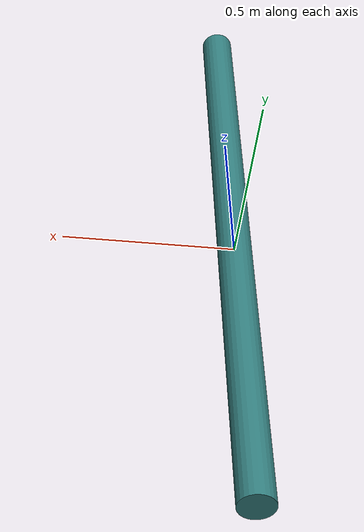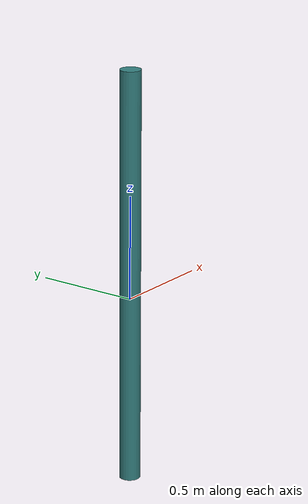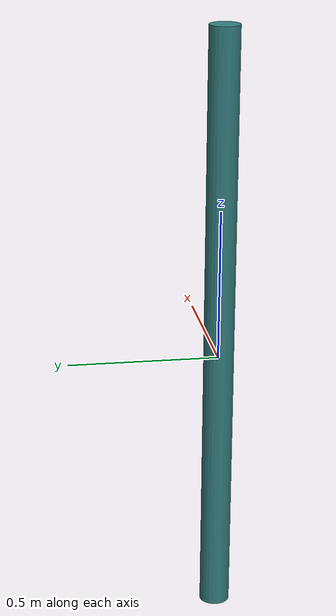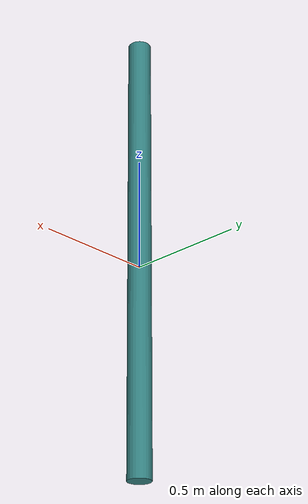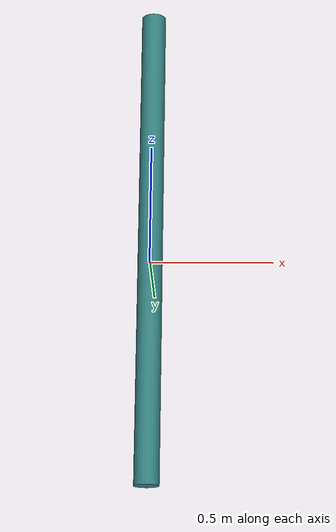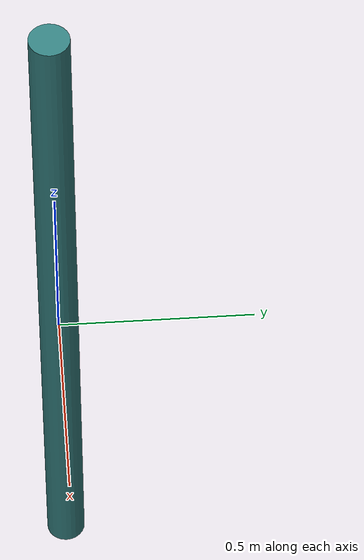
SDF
<sdf version="1.6">
    <model name="pole">
        <allow_auto_disable>true</allow_auto_disable>
        <link name="link_1">
            <kinematic>true</kinematic>
            <pose>0 0 0.1 0 0 0 0</pose>
            <inertial>
                <pose>0 0 -0.08 0 0 0 0</pose>
                <inertia>
                    <ixx>0.03541666666666667</ixx>
                    <ixy>0</ixy>
                    <ixz>0</ixz>
                    <iyy>0.04166666666666667</iyy>
                    <iyz>0</iyz>
                    <izz>0.010416666666666668</izz>
                </inertia>
                <mass>10.0</mass>
            </inertial>
            <visual name="visual">
                <geometry>
                    <cylinder>
                        <radius>0.05</radius>
                        <length>2</length>
                    </cylinder>
                </geometry>
                <material>
                    <ambient>0.2 0.5 0.5 1.0</ambient>
                    <diffuse>0.2 0.5 0.5 1.0</diffuse>
                </material>
            </visual>
            <collision name="collision">
                <geometry>
                    <cylinder>
                        <radius>0.05</radius>
                        <length>2</length>
                    </cylinder>
                </geometry>
                <surface>
                    <friction>
                        <ode>
                            <mu>1.0</mu>
                            <mu2>1.0</mu2>
                        </ode>
                    </friction>
                    <contact>
                        <ode>
                            <kp>1e15</kp>
                            <kd>1e12</kd>
                        </ode>
                    </contact>
                </surface>
            </collision>
        </link>
    </model>
</sdf>
